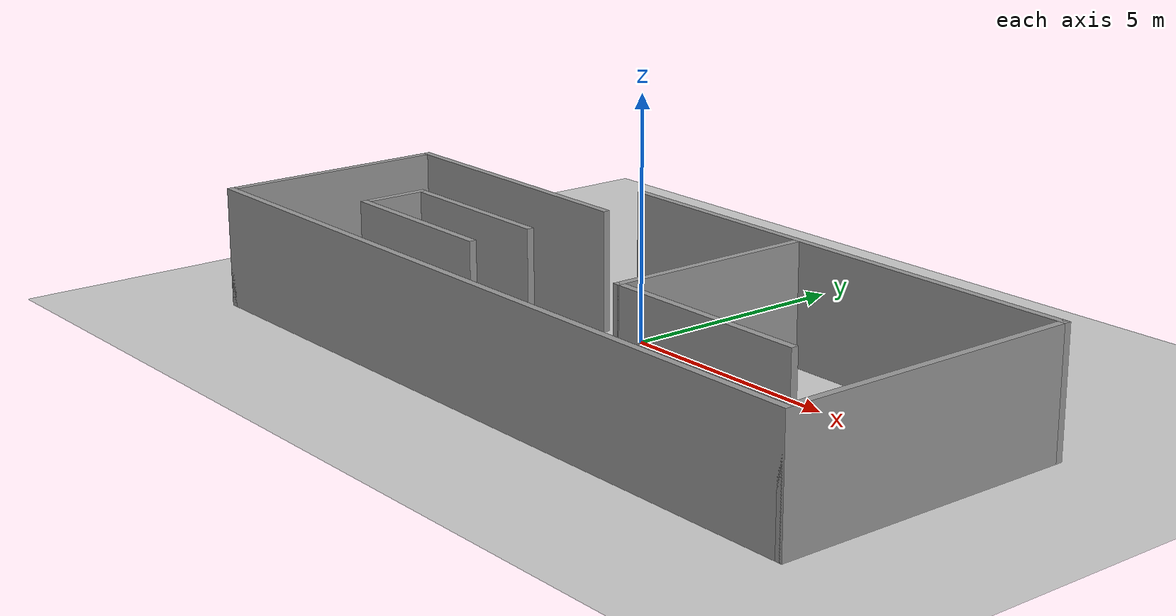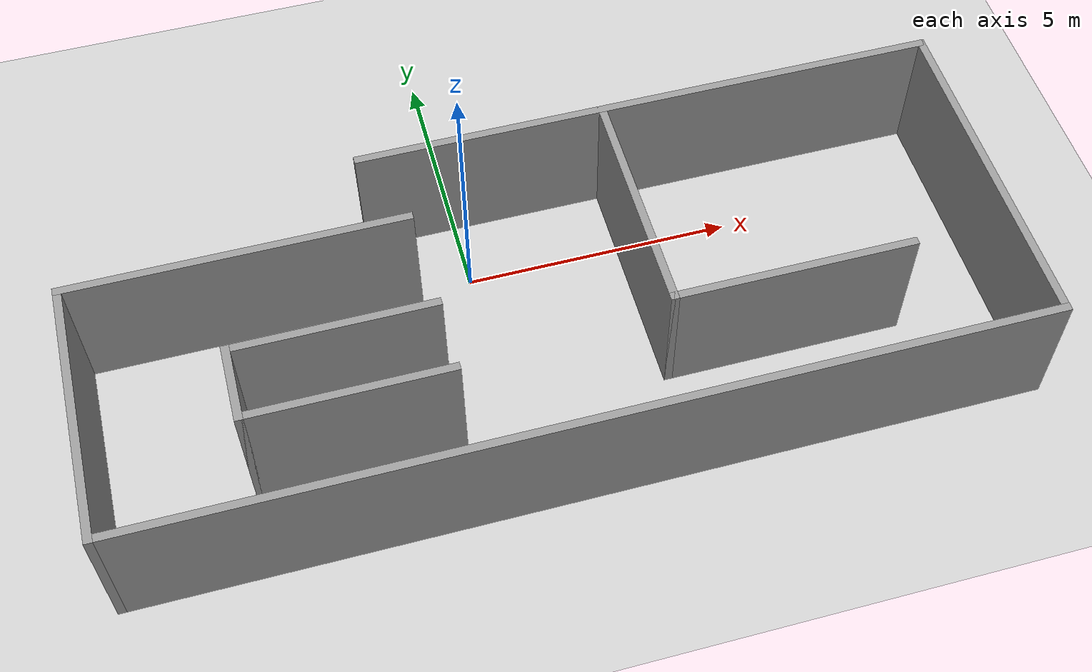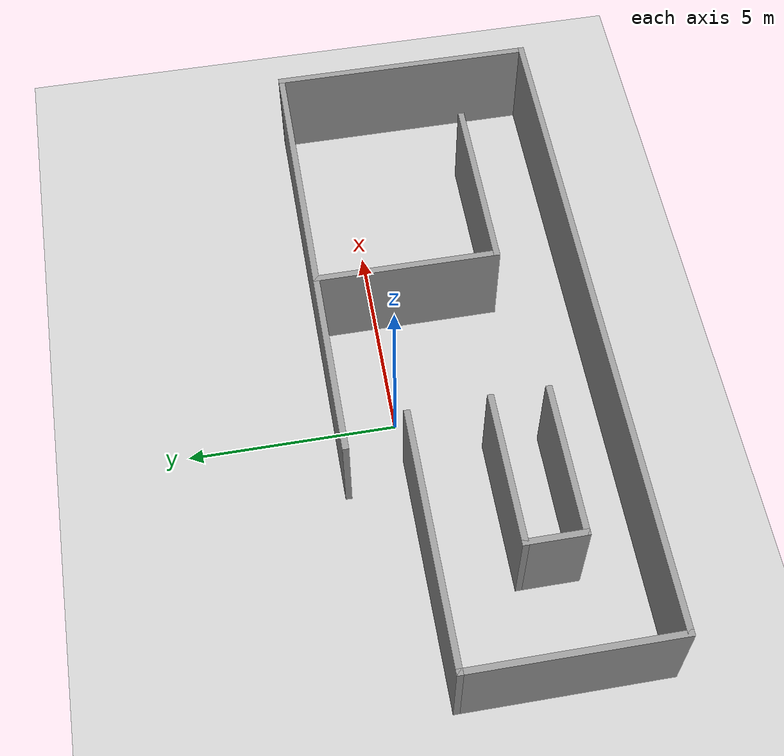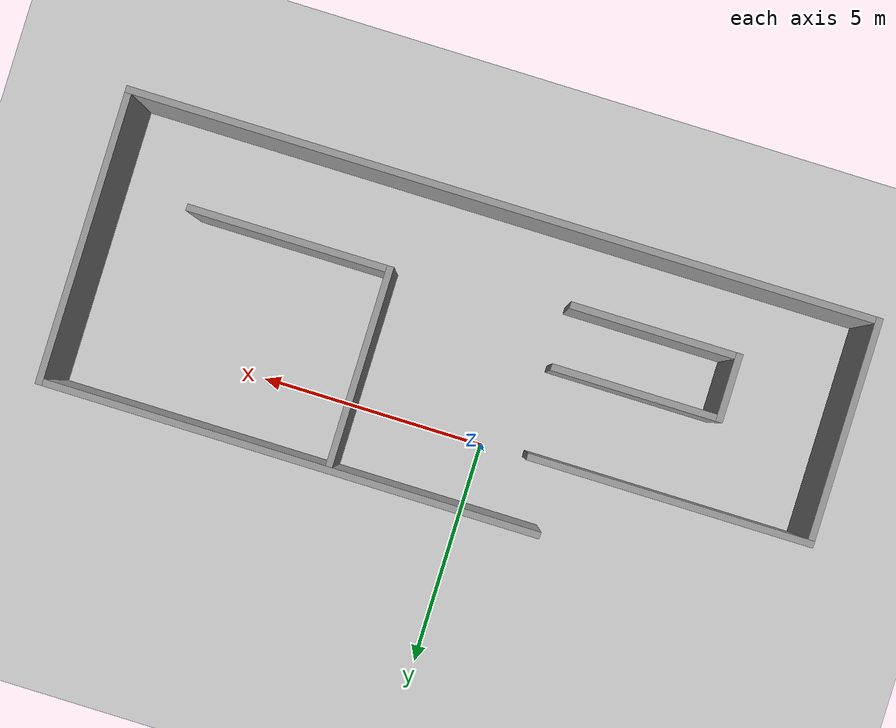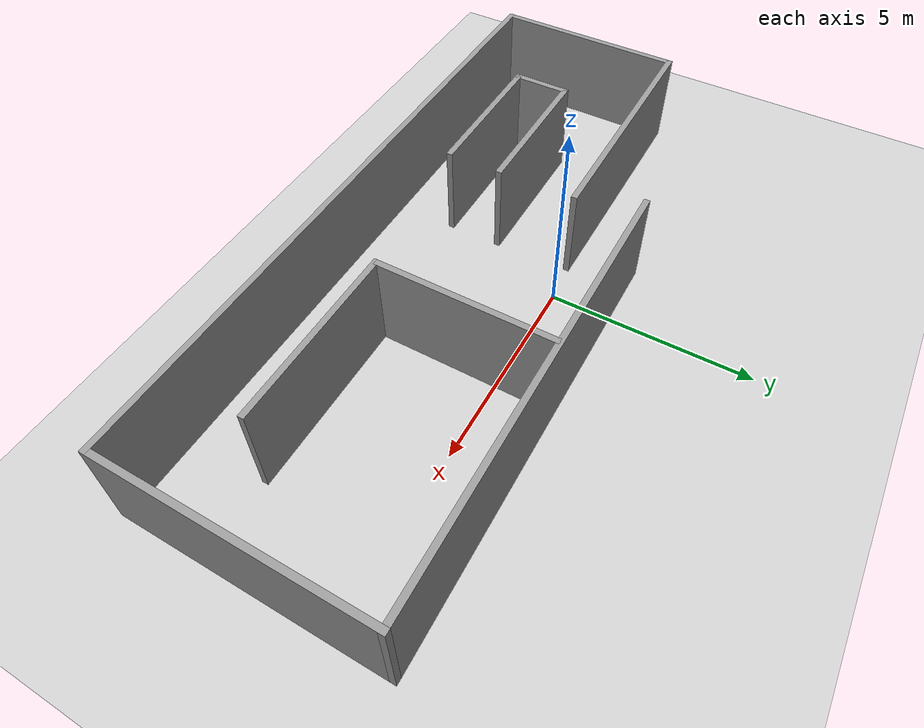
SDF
<sdf version="1.7">
 <world name="default">
  <light name="sun" type="directional">
   <pose>0 0 10 0 -0 0</pose>
   <diffuse>0.8 0.8 0.8 1</diffuse>
   <specular>0.2 0.2 0.2 1</specular>
   <attenuation>
    <range>1000</range>
    <constant>0.9</constant>
    <linear>0.01</linear>
    <quadratic>0.001</quadratic>
   </attenuation>
   <direction>-0.5 0.1 -0.9</direction>
   <spot><inner_angle>0</inner_angle><outer_angle>0</outer_angle><falloff>0</falloff></spot>
  </light>
  <model name="ground_plane">
   <static>1</static>
   <link name="link">
    <collision name="collision">
     <geometry><plane><normal>0 0 1</normal><size>100 100</size></plane></geometry>
     <surface>
      <contact><collide_bitmask>65535</collide_bitmask></contact>
      <friction><ode><mu>100</mu><mu2>50</mu2></ode></friction>
     </surface>
    </collision>
    <visual name="visual">
     <cast_shadows>0</cast_shadows>
     <geometry><plane><normal>0 0 1</normal><size>100 100</size></plane></geometry>
     <material>
      <script><uri>file://media/materials/scripts/gazebo.material</uri><name>Gazebo/Grey</name></script>
     </material>
    </visual>
   </link>
  </model>
  <gravity>0 0 -9.8</gravity>
  <magnetic_field>6e-06 2.3e-05 -4.2e-05</magnetic_field>
  <atmosphere type="adiabatic"/>
  <physics type="ode">
   <max_step_size>0.001</max_step_size>
   <real_time_factor>1</real_time_factor>
   <real_time_update_rate>1000</real_time_update_rate>
  </physics>
  <scene><ambient>0.4 0.4 0.4 1</ambient><background>0.7 0.7 0.7 1</background><shadows>1</shadows></scene>
  <spherical_coordinates>
   <surface_model>EARTH_WGS84</surface_model>
   <latitude_deg>0</latitude_deg>
   <longitude_deg>0</longitude_deg>
   <elevation>0</elevation>
   <heading_deg>0</heading_deg>
  </spherical_coordinates>
  <model name="definitivo">
   <pose>1.04989 -1.61487 0 0 -0 0</pose>
   <link name="Wall_0">
    <collision name="Wall_0_Collision">
     <geometry><box><size>6.25 0.15 2.5</size></box></geometry>
     <pose>0 0 1.25 0 -0 0</pose>
    </collision>
    <visual name="Wall_0_Visual">
     <pose>0 0 1.25 0 -0 0</pose>
     <geometry><box><size>6.25 0.15 2.5</size></box></geometry>
     <material>
      <script><uri>file://media/materials/scripts/gazebo.material</uri><name>Gazebo/Grey</name></script>
      <ambient>1 1 1 1</ambient>
     </material>
     <meta><layer>0</layer></meta>
    </visual>
    <pose>-5.125 1.5075 0 0 -0 3.14159</pose>
   </link>
   <link name="Wall_1">
    <collision name="Wall_1_Collision">
     <geometry><box><size>5 0.15 2.5</size></box></geometry>
     <pose>0 0 1.25 0 -0 0</pose>
    </collision>
    <visual name="Wall_1_Visual">
     <pose>0 0 1.25 0 -0 0</pose>
     <geometry><box><size>5 0.15 2.5</size></box></geometry>
     <material>
      <script><uri>file://media/materials/scripts/gazebo.material</uri><name>Gazebo/Grey</name></script>
      <ambient>1 1 1 1</ambient>
     </material>
     <meta><layer>0</layer></meta>
    </visual>
    <pose>-8.175 -0.9175 0 0 -0 -1.5708</pose>
   </link>
   <link name="Wall_10">
    <collision name="Wall_10_Collision">
     <geometry><box><size>1.5 0.15 2.5</size></box></geometry>
     <pose>0 0 1.25 0 -0 0</pose>
    </collision>
    <visual name="Wall_10_Visual">
     <pose>0 0 1.25 0 -0 0</pose>
     <geometry><box><size>1.5 0.15 2.5</size></box></geometry>
     <material>
      <script><uri>file://media/materials/scripts/gazebo.material</uri><name>Gazebo/Grey</name></script>
      <ambient>1 1 1 1</ambient>
     </material>
     <meta><layer>0</layer></meta>
    </visual>
    <pose>-5.605 -1.0975 0 0 -0 -1.5708</pose>
   </link>
   <link name="Wall_11">
    <collision name="Wall_11_Collision">
     <geometry><box><size>3.75 0.15 2.5</size></box></geometry>
     <pose>0 0 1.25 0 -0 0</pose>
    </collision>
    <visual name="Wall_11_Visual">
     <pose>0 0 1.25 0 -0 0</pose>
     <geometry><box><size>3.75 0.15 2.5</size></box></geometry>
     <material>
      <script><uri>file://media/materials/scripts/gazebo.material</uri><name>Gazebo/Grey</name></script>
      <ambient>1 1 1 1</ambient>
     </material>
     <meta><layer>0</layer></meta>
    </visual>
    <pose>-3.805 -1.7725 0 0 -0 0</pose>
   </link>
   <link name="Wall_2">
    <collision name="Wall_2_Collision">
     <geometry><box><size>16.5 0.15 2.5</size></box></geometry>
     <pose>0 0 1.25 0 -0 0</pose>
    </collision>
    <visual name="Wall_2_Visual">
     <pose>0 0 1.25 0 -0 0</pose>
     <geometry><box><size>16.5 0.15 2.5</size></box></geometry>
     <material>
      <script><uri>file://media/materials/scripts/gazebo.material</uri><name>Gazebo/Grey</name></script>
      <ambient>1 1 1 1</ambient>
     </material>
     <meta><layer>0</layer></meta>
    </visual>
    <pose>-0 -3.3425 0 0 -0 0</pose>
   </link>
   <link name="Wall_3">
    <collision name="Wall_3_Collision">
     <geometry><box><size>6.5 0.15 2.5</size></box></geometry>
     <pose>0 0 1.25 0 -0 0</pose>
    </collision>
    <visual name="Wall_3_Visual">
     <pose>0 0 1.25 0 -0 0</pose>
     <geometry><box><size>6.5 0.15 2.5</size></box></geometry>
     <material>
      <script><uri>file://media/materials/scripts/gazebo.material</uri><name>Gazebo/Grey</name></script>
      <ambient>1 1 1 1</ambient>
     </material>
     <meta><layer>0</layer></meta>
    </visual>
    <pose>8.175 -0.1675 0 0 -0 1.5708</pose>
   </link>
   <link name="Wall_4">
    <collision name="Wall_4_Collision">
     <geometry><box><size>11 0.15 2.5</size></box></geometry>
     <pose>0 0 1.25 0 -0 0</pose>
    </collision>
    <visual name="Wall_4_Visual">
     <pose>0 0 1.25 0 -0 0</pose>
     <geometry><box><size>11 0.15 2.5</size></box></geometry>
     <material>
      <script><uri>file://media/materials/scripts/gazebo.material</uri><name>Gazebo/Grey</name></script>
      <ambient>1 1 1 1</ambient>
     </material>
     <meta><layer>0</layer></meta>
    </visual>
    <pose>2.75 3.0075 0 0 -0 3.14159</pose>
   </link>
   <link name="Wall_6">
    <collision name="Wall_6_Collision">
     <geometry><box><size>4.5 0.15 2.5</size></box></geometry>
     <pose>0 0 1.25 0 -0 0</pose>
    </collision>
    <visual name="Wall_6_Visual">
     <pose>0 0 1.25 0 -0 0</pose>
     <geometry><box><size>4.5 0.15 2.5</size></box></geometry>
     <material>
      <script><uri>file://media/materials/scripts/gazebo.material</uri><name>Gazebo/Grey</name></script>
      <ambient>1 1 1 1</ambient>
     </material>
     <meta><layer>0</layer></meta>
    </visual>
    <pose>1.885 0.8125 0 0 -0 -1.5708</pose>
   </link>
   <link name="Wall_7">
    <collision name="Wall_7_Collision">
     <geometry><box><size>4.5 0.15 2.5</size></box></geometry>
     <pose>0 0 1.25 0 -0 0</pose>
    </collision>
    <visual name="Wall_7_Visual">
     <pose>0 0 1.25 0 -0 0</pose>
     <geometry><box><size>4.5 0.15 2.5</size></box></geometry>
     <material>
      <script><uri>file://media/materials/scripts/gazebo.material</uri><name>Gazebo/Grey</name></script>
      <ambient>1 1 1 1</ambient>
     </material>
     <meta><layer>0</layer></meta>
    </visual>
    <pose>4.06 -1.3625 0 0 -0 0</pose>
   </link>
   <link name="Wall_9">
    <collision name="Wall_9_Collision">
     <geometry><box><size>3.75 0.15 2.5</size></box></geometry>
     <pose>0 0 1.25 0 -0 0</pose>
    </collision>
    <visual name="Wall_9_Visual">
     <pose>0 0 1.25 0 -0 0</pose>
     <geometry><box><size>3.75 0.15 2.5</size></box></geometry>
     <material>
      <script><uri>file://media/materials/scripts/gazebo.material</uri><name>Gazebo/Grey</name></script>
      <ambient>1 1 1 1</ambient>
     </material>
     <meta><layer>0</layer></meta>
    </visual>
    <pose>-3.805 -0.4225 0 0 -0 3.14159</pose>
   </link>
   <static>1</static>
  </model>
 </world>
</sdf>
